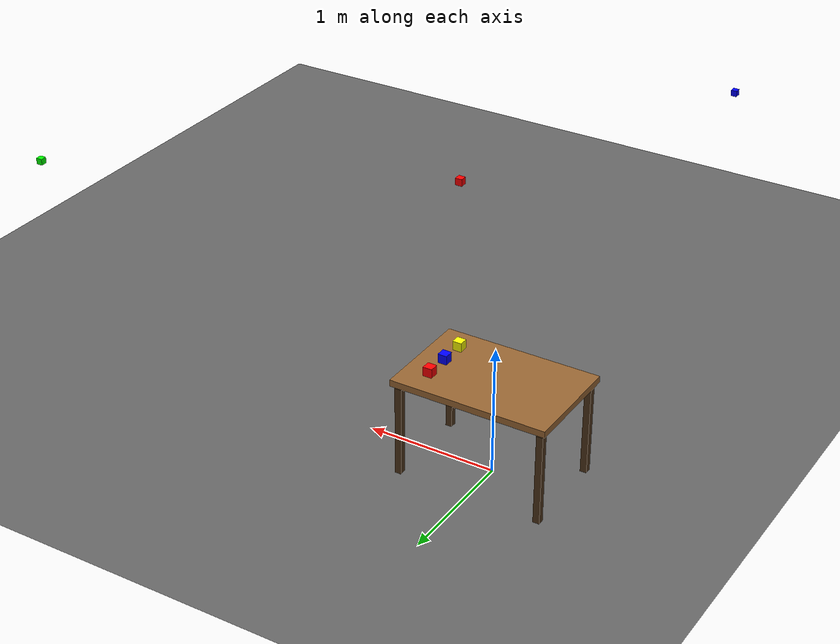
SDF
<?xml version="1.0" ?>
<sdf version="1.9">
  <world name="ur12e_table_world">

    <physics name="1ms" type="ignored">
      <max_step_size>0.001</max_step_size>
      <real_time_factor>1.0</real_time_factor>
    </physics>

    <plugin filename="gz-sim-physics-system"
            name="gz::sim::systems::Physics"/>
    <plugin filename="gz-sim-sensors-system"
            name="gz::sim::systems::Sensors">
      <render_engine>ogre2</render_engine>
    </plugin>
    <plugin filename="gz-sim-scene-broadcaster-system"
            name="gz::sim::systems::SceneBroadcaster"/>
    <plugin filename="gz-sim-user-commands-system"
            name="gz::sim::systems::UserCommands"/>

    <light name="sun" type="directional">
      <cast_shadows>true</cast_shadows>
      <pose>0 0 10 0 0 0</pose>
      <diffuse>0.8 0.8 0.8 1</diffuse>
      <specular>0.2 0.2 0.2 1</specular>
      <direction>-0.5 0.1 -0.9</direction>
    </light>

    <model name="ground_plane">
      <static>true</static>
      <link name="link">
        <collision name="collision">
          <geometry>
            <plane><normal>0 0 1</normal><size>20 20</size></plane>
          </geometry>
        </collision>
        <visual name="visual">
          <geometry>
            <plane><normal>0 0 1</normal><size>20 20</size></plane>
          </geometry>
          <material>
            <ambient>0.3 0.3 0.3 1</ambient>
            <diffuse>0.4 0.4 0.4 1</diffuse>
          </material>
        </visual>
      </link>
    </model>

    <model name="work_table">
      <static>true</static>
      <pose>0 0 0 0 0 0</pose>
      <link name="tabletop">
        <pose>0 0 0.75 0 0 0</pose>
        <collision name="collision">
          <geometry><box><size>1.2 0.8 0.05</size></box></geometry>
        </collision>
        <visual name="visual">
          <geometry><box><size>1.2 0.8 0.05</size></box></geometry>
          <material>
            <ambient>0.5 0.35 0.2 1</ambient>
            <diffuse>0.6 0.4 0.2 1</diffuse>
          </material>
        </visual>
      </link>
      <link name="leg_fl">
        <pose>0.55 0.35 0.35 0 0 0</pose>
        <collision name="collision">
          <geometry><box><size>0.05 0.05 0.7</size></box></geometry>
        </collision>
        <visual name="visual">
          <geometry><box><size>0.05 0.05 0.7</size></box></geometry>
          <material><ambient>0.3 0.2 0.1 1</ambient></material>
        </visual>
      </link>
      <link name="leg_fr">
        <pose>0.55 -0.35 0.35 0 0 0</pose>
        <collision name="collision">
          <geometry><box><size>0.05 0.05 0.7</size></box></geometry>
        </collision>
        <visual name="visual">
          <geometry><box><size>0.05 0.05 0.7</size></box></geometry>
          <material><ambient>0.3 0.2 0.1 1</ambient></material>
        </visual>
      </link>
      <link name="leg_bl">
        <pose>-0.55 0.35 0.35 0 0 0</pose>
        <collision name="collision">
          <geometry><box><size>0.05 0.05 0.7</size></box></geometry>
        </collision>
        <visual name="visual">
          <geometry><box><size>0.05 0.05 0.7</size></box></geometry>
          <material><ambient>0.3 0.2 0.1 1</ambient></material>
        </visual>
      </link>
      <link name="leg_br">
        <pose>-0.55 -0.35 0.35 0 0 0</pose>
        <collision name="collision">
          <geometry><box><size>0.05 0.05 0.7</size></box></geometry>
        </collision>
        <visual name="visual">
          <geometry><box><size>0.05 0.05 0.7</size></box></geometry>
          <material><ambient>0.3 0.2 0.1 1</ambient></material>
        </visual>
      </link>
    </model>

    <!-- TOP camera — shifted toward table front so arm is at frame edge -->
    <model name="camera_top">
      <static>true</static>
      <pose>0.3 0 2.2 0 1.5707963 0</pose>
      <link name="link">
        <visual name="visual">
          <geometry><box><size>0.05 0.05 0.05</size></box></geometry>
          <material><ambient>1 0 0 1</ambient></material>
        </visual>
        <sensor name="camera_top_sensor" type="camera">
          <always_on>true</always_on>
          <update_rate>30</update_rate>
          <camera>
            <horizontal_fov>1.047</horizontal_fov>
            <image><width>1280</width><height>720</height><format>R8G8B8</format></image>
            <clip><near>0.1</near><far>10.0</far></clip>
          </camera>
          <topic>/cameras/top/image_raw</topic>
        </sensor>
        <sensor name="camera_top_depth_sensor" type="depth_camera">
          <always_on>true</always_on>
          <update_rate>30</update_rate>
          <camera>
            <horizontal_fov>1.047</horizontal_fov>
            <image><width>1280</width><height>720</height><format>R_FLOAT32</format></image>
            <clip><near>0.1</near><far>10.0</far></clip>
          </camera>
          <topic>/cameras/top/depth</topic>
        </sensor>
      </link>
    </model>

    <model name="camera_side">
      <static>true</static>
      <pose>4.0 0 1.4 0 0 3.14159</pose>
      <link name="link">
        <visual name="visual">
          <geometry><box><size>0.05 0.05 0.05</size></box></geometry>
          <material><ambient>0 1 0 1</ambient></material>
        </visual>
        <sensor name="camera_side_sensor" type="camera">
          <always_on>true</always_on>
          <update_rate>30</update_rate>
          <camera>
            <horizontal_fov>0.8</horizontal_fov>
            <image><width>1280</width><height>720</height><format>R8G8B8</format></image>
            <clip><near>0.1</near><far>20.0</far></clip>
          </camera>
          <topic>/cameras/side/image_raw</topic>
        </sensor>
      </link>
    </model>

    <!-- FRONT camera — front view, straight on
         positioned to see full robot from front
         y=-4.0 away, perfectly flat, facing +y direction -->
    <model name="camera_front">
      <static>true</static>
      <pose>0 -4.0 1.4 0 0 1.5707963</pose>
      <link name="link">
        <visual name="visual">
          <geometry><box><size>0.05 0.05 0.05</size></box></geometry>
          <material><ambient>0 0 1 1</ambient></material>
        </visual>
        <sensor name="camera_front_sensor" type="camera">
          <always_on>true</always_on>
          <update_rate>30</update_rate>
          <camera>
            <horizontal_fov>0.8</horizontal_fov>
            <image><width>1280</width><height>720</height><format>R8G8B8</format></image>
            <clip><near>0.1</near><far>20.0</far></clip>
          </camera>
          <topic>/cameras/front/image_raw</topic>
        </sensor>
      </link>
    </model>

    <!-- Colored cubes for eye-gaze target selection -->
    <!-- Table surface z=0.775m, cube half=0.025m, center z=0.800m -->

    <model name="red_cube">
      <static>true</static>
      <pose>0.4 0.2 0.810 0 0 0</pose>
      <link name="link">
        <collision name="collision">
          <geometry><box><size>0.07 0.07 0.07</size></box></geometry>
        </collision>
        <visual name="visual">
          <geometry><box><size>0.07 0.07 0.07</size></box></geometry>
          <material>
            <ambient>1 0 0 1</ambient>
            <diffuse>1 0 0 1</diffuse>
            <specular>0.1 0.1 0.1 1</specular>
          </material>
        </visual>
      </link>
    </model>

    <model name="blue_cube">
      <static>true</static>
      <pose>0.4 0.0 0.810 0 0 0</pose>
      <link name="link">
        <collision name="collision">
          <geometry><box><size>0.07 0.07 0.07</size></box></geometry>
        </collision>
        <visual name="visual">
          <geometry><box><size>0.07 0.07 0.07</size></box></geometry>
          <material>
            <ambient>0 0 1 1</ambient>
            <diffuse>0 0 1 1</diffuse>
            <specular>0.1 0.1 0.1 1</specular>
          </material>
        </visual>
      </link>
    </model>

    <model name="yellow_cube">
      <static>true</static>
      <pose>0.4 -0.2 0.810 0 0 0</pose>
      <link name="link">
        <collision name="collision">
          <geometry><box><size>0.07 0.07 0.07</size></box></geometry>
        </collision>
        <visual name="visual">
          <geometry><box><size>0.07 0.07 0.07</size></box></geometry>
          <material>
            <ambient>1 1 0 1</ambient>
            <diffuse>1 1 0 1</diffuse>
            <specular>0.1 0.1 0.1 1</specular>
          </material>
        </visual>
      </link>
    </model>

  </world>
</sdf>
